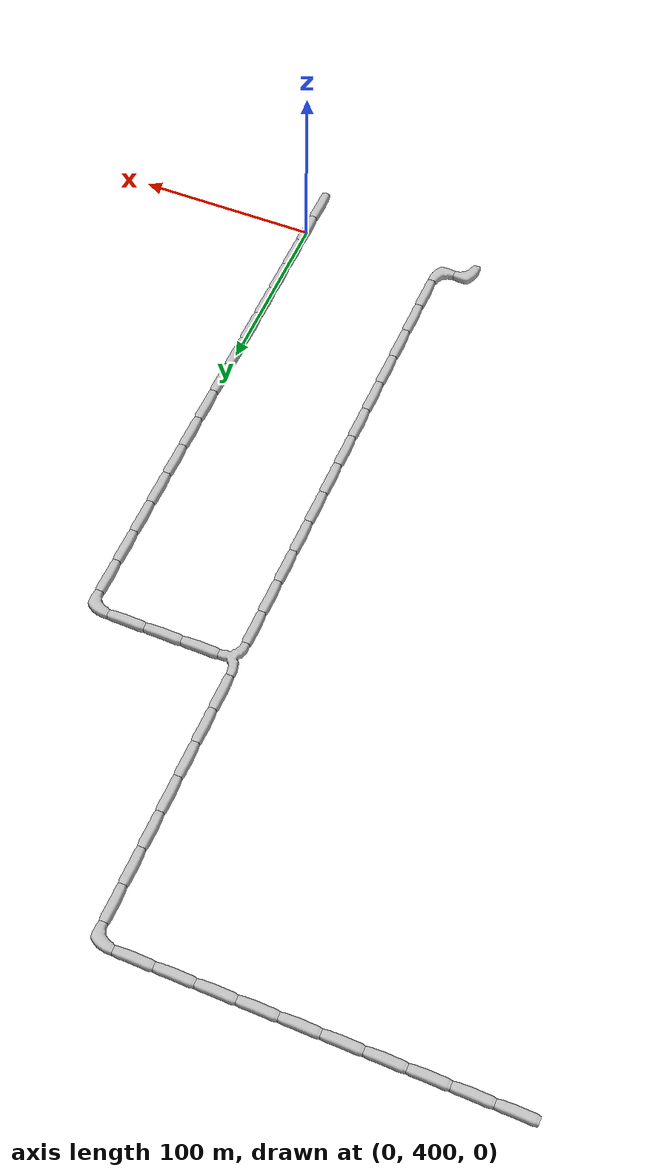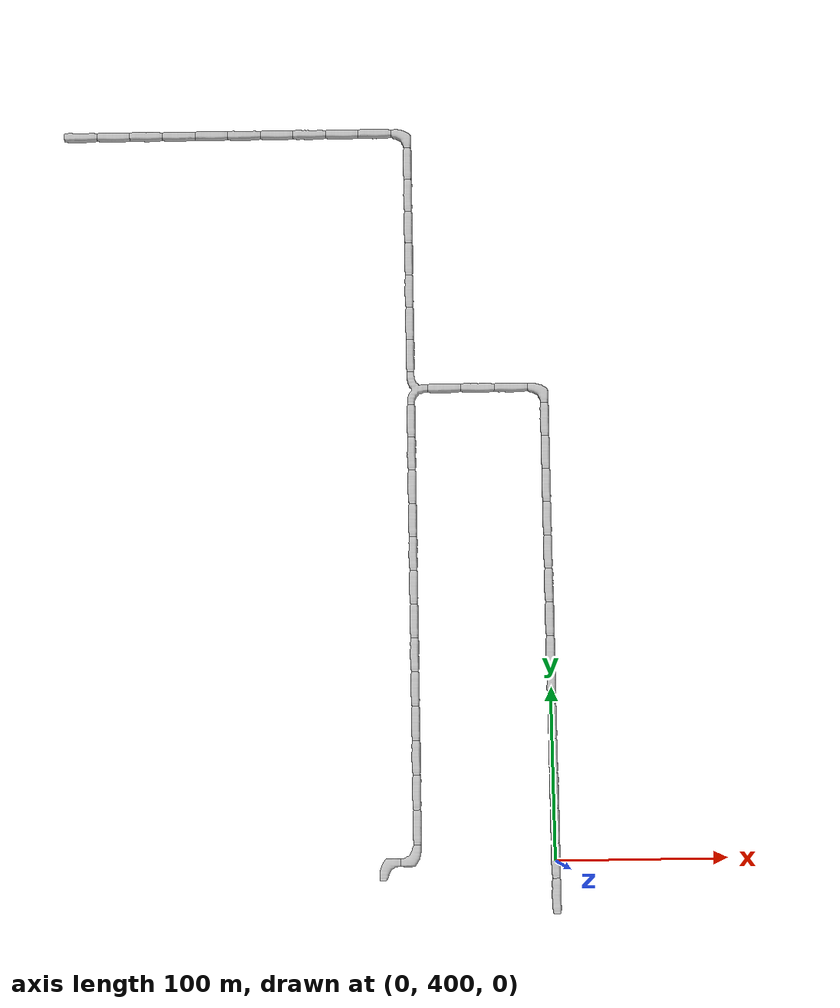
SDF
<sdf version="1.6">
 <world name="cave_8000_16">
  <include>
   <static>true</static>
   <name>cave_0_19</name>
   <pose>0 380 0 0 0 0.0</pose>
   <uri>model://cave_straight_20m</uri>
  </include>
  <include>
   <static>true</static>
   <name>cave_0_20</name>
   <pose>0 400 0 0 0 0.0</pose>
   <uri>model://cave_straight_20m</uri>
  </include>
  <include>
   <static>true</static>
   <name>cave_0_21</name>
   <pose>0 420 0 0 0 0.0</pose>
   <uri>model://cave_straight_20m</uri>
  </include>
  <include>
   <static>true</static>
   <name>cave_0_22</name>
   <pose>0 440 0 0 0 0.0</pose>
   <uri>model://cave_straight_20m</uri>
  </include>
  <include>
   <static>true</static>
   <name>cave_0_23</name>
   <pose>0 460 0 0 0 0.0</pose>
   <uri>model://cave_straight_20m</uri>
  </include>
  <include>
   <static>true</static>
   <name>cave_0_24</name>
   <pose>0 480 0 0 0 0.0</pose>
   <uri>model://cave_straight_20m</uri>
  </include>
  <include>
   <static>true</static>
   <name>cave_0_25</name>
   <pose>0 500 0 0 0 0.0</pose>
   <uri>model://cave_straight_20m</uri>
  </include>
  <include>
   <static>true</static>
   <name>cave_0_26</name>
   <pose>0 520 0 0 0 0.0</pose>
   <uri>model://cave_straight_20m</uri>
  </include>
  <include>
   <static>true</static>
   <name>cave_0_27</name>
   <pose>0 540 0 0 0 0.0</pose>
   <uri>model://cave_straight_20m</uri>
  </include>
  <include>
   <static>true</static>
   <name>cave_0_28</name>
   <pose>0 560 0 0 0 0.0</pose>
   <uri>model://cave_straight_20m</uri>
  </include>
  <include>
   <static>true</static>
   <name>cave_0_29</name>
   <pose>0 580 0 0 0 0.0</pose>
   <uri>model://cave_straight_20m</uri>
  </include>
  <include>
   <static>true</static>
   <name>cave_0_30</name>
   <pose>0 600 0 0 0 0.0</pose>
   <uri>model://cave_straight_20m</uri>
  </include>
  <include>
   <static>true</static>
   <name>cave_0_31</name>
   <pose>0 620 0 0 0 0.0</pose>
   <uri>model://cave_straight_20m</uri>
  </include>
  <include>
   <static>true</static>
   <name>cave_0_32</name>
   <pose>0 640 0 0 0 0.0</pose>
   <uri>model://cave_straight_20m</uri>
  </include>
  <include>
   <static>true</static>
   <name>cave_0_33</name>
   <pose>0 660 0 0 0 0.0</pose>
   <uri>model://cave_straight_20m</uri>
  </include>
  <include>
   <static>true</static>
   <name>cave_0_34</name>
   <pose>0 680 0 0 0 3.141592653589793</pose>
   <uri>model://cave_L_20m</uri>
  </include>
  <include>
   <static>true</static>
   <name>cave_-1_34</name>
   <pose>-20 680 0 0 0 1.5707963267948966</pose>
   <uri>model://cave_straight_20m</uri>
  </include>
  <include>
   <static>true</static>
   <name>cave_-2_34</name>
   <pose>-40 680 0 0 0 1.5707963267948966</pose>
   <uri>model://cave_straight_20m</uri>
  </include>
  <include>
   <static>true</static>
   <name>cave_-3_34</name>
   <pose>-60 680 0 0 0 1.5707963267948966</pose>
   <uri>model://cave_straight_20m</uri>
  </include>
  <include>
   <static>true</static>
   <name>cave_-4_34</name>
   <pose>-80 680 0 0 0 -1.5707963267948966</pose>
   <uri>model://cave_3way_20m</uri>
  </include>
  <include>
   <static>true</static>
   <name>cave_-4_33</name>
   <pose>-80 660 0 0 0 0.0</pose>
   <uri>model://cave_straight_20m</uri>
  </include>
  <include>
   <static>true</static>
   <name>cave_-4_32</name>
   <pose>-80 640 0 0 0 0.0</pose>
   <uri>model://cave_straight_20m</uri>
  </include>
  <include>
   <static>true</static>
   <name>cave_-4_31</name>
   <pose>-80 620 0 0 0 0.0</pose>
   <uri>model://cave_straight_20m</uri>
  </include>
  <include>
   <static>true</static>
   <name>cave_-4_30</name>
   <pose>-80 600 0 0 0 0.0</pose>
   <uri>model://cave_straight_20m</uri>
  </include>
  <include>
   <static>true</static>
   <name>cave_-4_29</name>
   <pose>-80 580 0 0 0 0.0</pose>
   <uri>model://cave_straight_20m</uri>
  </include>
  <include>
   <static>true</static>
   <name>cave_-4_28</name>
   <pose>-80 560 0 0 0 0.0</pose>
   <uri>model://cave_straight_20m</uri>
  </include>
  <include>
   <static>true</static>
   <name>cave_-4_27</name>
   <pose>-80 540 0 0 0 0.0</pose>
   <uri>model://cave_straight_20m</uri>
  </include>
  <include>
   <static>true</static>
   <name>cave_-4_26</name>
   <pose>-80 520 0 0 0 0.0</pose>
   <uri>model://cave_straight_20m</uri>
  </include>
  <include>
   <static>true</static>
   <name>cave_-4_25</name>
   <pose>-80 500 0 0 0 0.0</pose>
   <uri>model://cave_straight_20m</uri>
  </include>
  <include>
   <static>true</static>
   <name>cave_-4_24</name>
   <pose>-80 480 0 0 0 0.0</pose>
   <uri>model://cave_straight_20m</uri>
  </include>
  <include>
   <static>true</static>
   <name>cave_-4_23</name>
   <pose>-80 460 0 0 0 0.0</pose>
   <uri>model://cave_straight_20m</uri>
  </include>
  <include>
   <static>true</static>
   <name>cave_-4_22</name>
   <pose>-80 440 0 0 0 0.0</pose>
   <uri>model://cave_straight_20m</uri>
  </include>
  <include>
   <static>true</static>
   <name>cave_-4_21</name>
   <pose>-80 420 0 0 0 0.0</pose>
   <uri>model://cave_straight_20m</uri>
  </include>
  <include>
   <static>true</static>
   <name>cave_-4_20</name>
   <pose>-80 400 0 0 0 1.5707963267948966</pose>
   <uri>model://cave_L_20m</uri>
  </include>
  <include>
   <static>true</static>
   <name>cave_-5_20</name>
   <pose>-100 400 0 0 0 -1.5707963267948966</pose>
   <uri>model://cave_L_20m</uri>
  </include>
  <include>
   <static>true</static>
   <name>cave_-4_35</name>
   <pose>-80 700 0 0 0 0.0</pose>
   <uri>model://cave_straight_20m</uri>
  </include>
  <include>
   <static>true</static>
   <name>cave_-4_36</name>
   <pose>-80 720 0 0 0 0.0</pose>
   <uri>model://cave_straight_20m</uri>
  </include>
  <include>
   <static>true</static>
   <name>cave_-4_37</name>
   <pose>-80 740 0 0 0 0.0</pose>
   <uri>model://cave_straight_20m</uri>
  </include>
  <include>
   <static>true</static>
   <name>cave_-4_38</name>
   <pose>-80 760 0 0 0 0.0</pose>
   <uri>model://cave_straight_20m</uri>
  </include>
  <include>
   <static>true</static>
   <name>cave_-4_39</name>
   <pose>-80 780 0 0 0 0.0</pose>
   <uri>model://cave_straight_20m</uri>
  </include>
  <include>
   <static>true</static>
   <name>cave_-4_40</name>
   <pose>-80 800 0 0 0 0.0</pose>
   <uri>model://cave_straight_20m</uri>
  </include>
  <include>
   <static>true</static>
   <name>cave_-4_41</name>
   <pose>-80 820 0 0 0 0.0</pose>
   <uri>model://cave_straight_20m</uri>
  </include>
  <include>
   <static>true</static>
   <name>cave_-4_42</name>
   <pose>-80 840 0 0 0 3.141592653589793</pose>
   <uri>model://cave_L_20m</uri>
  </include>
  <include>
   <static>true</static>
   <name>cave_-5_42</name>
   <pose>-100 840 0 0 0 1.5707963267948966</pose>
   <uri>model://cave_straight_20m</uri>
  </include>
  <include>
   <static>true</static>
   <name>cave_-6_42</name>
   <pose>-120 840 0 0 0 1.5707963267948966</pose>
   <uri>model://cave_straight_20m</uri>
  </include>
  <include>
   <static>true</static>
   <name>cave_-7_42</name>
   <pose>-140 840 0 0 0 1.5707963267948966</pose>
   <uri>model://cave_straight_20m</uri>
  </include>
  <include>
   <static>true</static>
   <name>cave_-8_42</name>
   <pose>-160 840 0 0 0 1.5707963267948966</pose>
   <uri>model://cave_straight_20m</uri>
  </include>
  <include>
   <static>true</static>
   <name>cave_-9_42</name>
   <pose>-180 840 0 0 0 1.5707963267948966</pose>
   <uri>model://cave_straight_20m</uri>
  </include>
  <include>
   <static>true</static>
   <name>cave_-10_42</name>
   <pose>-200 840 0 0 0 1.5707963267948966</pose>
   <uri>model://cave_straight_20m</uri>
  </include>
  <include>
   <static>true</static>
   <name>cave_-11_42</name>
   <pose>-220 840 0 0 0 1.5707963267948966</pose>
   <uri>model://cave_straight_20m</uri>
  </include>
  <include>
   <static>true</static>
   <name>cave_-12_42</name>
   <pose>-240 840 0 0 0 1.5707963267948966</pose>
   <uri>model://cave_straight_20m</uri>
  </include>
  <include>
   <static>true</static>
   <name>cave_-13_42</name>
   <pose>-260 840 0 0 0 1.5707963267948966</pose>
   <uri>model://cave_straight_20m</uri>
  </include>
  <include>
   <static>true</static>
   <name>cave_-14_42</name>
   <pose>-280 840 0 0 0 1.5707963267948966</pose>
   <uri>model://cave_straight_20m</uri>
  </include>
 </world>
</sdf>
